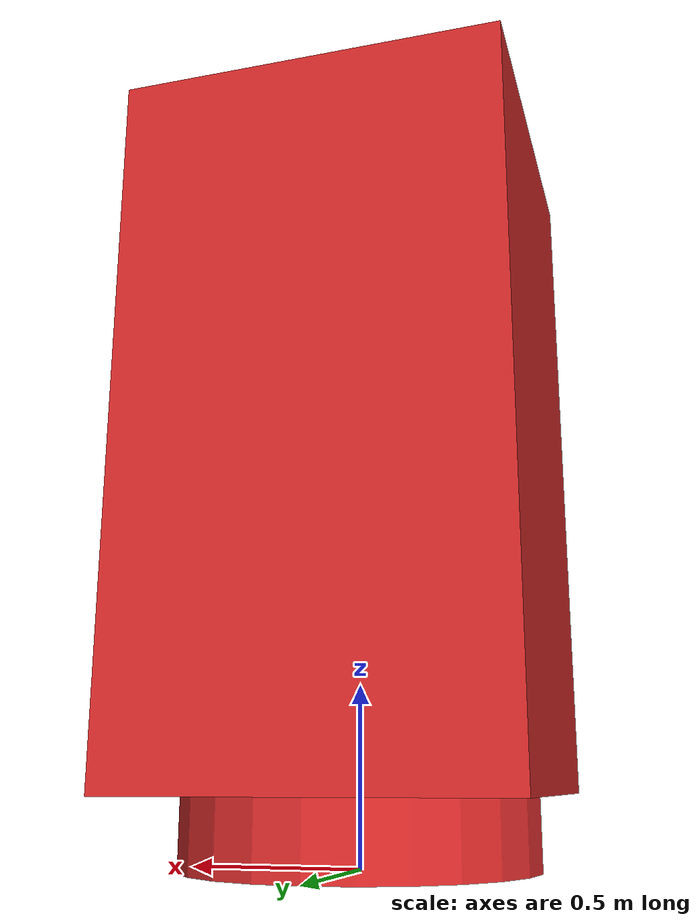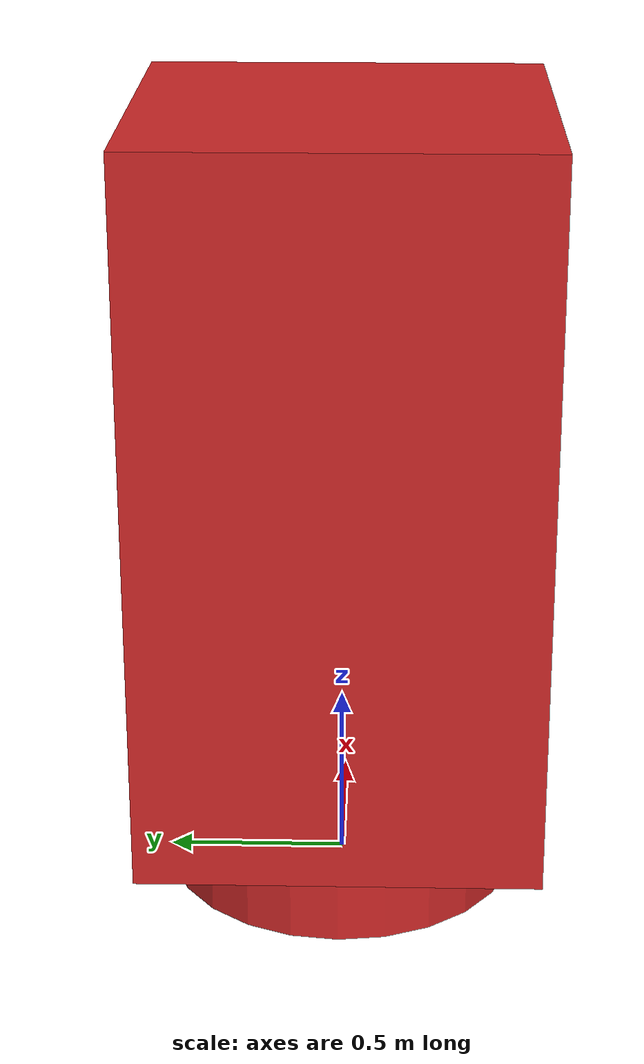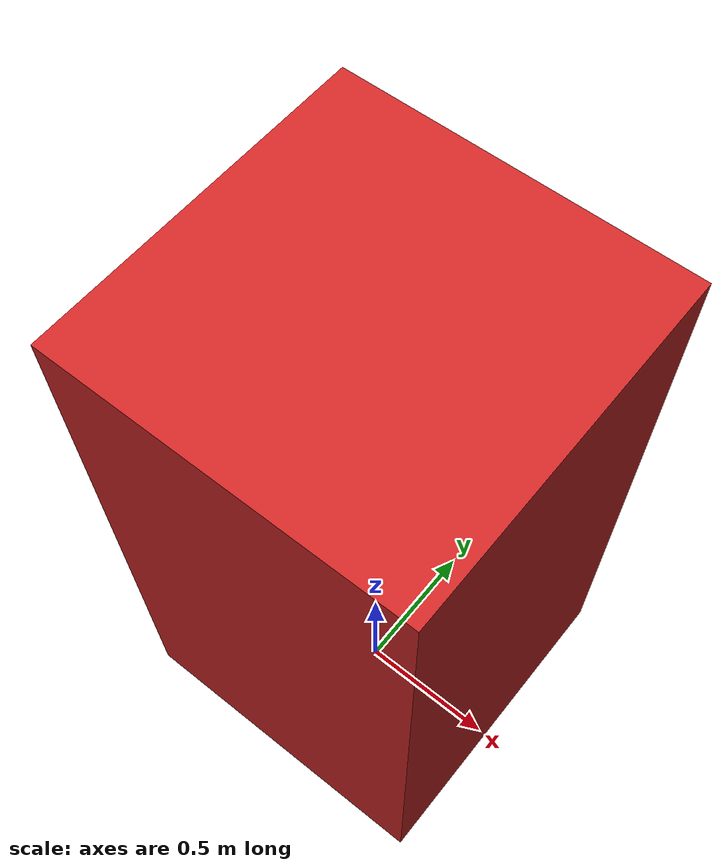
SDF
<?xml version='1.0'?>
<sdf version='1.7'>
  <model name='AMR'>
    <pose>0.0 0.0 0.0 0.0 0.0 0.0</pose>

    <link name='link_0'>
      <inertial>
        <mass>1</mass>
        <inertia>
          <ixx>0.145833</ixx>
          <ixy>0</ixy>
          <ixz>0</ixz>
          <iyy>0.145833</iyy>
          <iyz>0</iyz>
          <izz>0.125</izz>
        </inertia>
        <pose>0 0 0 0 -0 0</pose>
      </inertial>

      <gravity>0</gravity>
      <kinematic>1</kinematic>

      <visual name='visual'>
        <pose>0 0 0.10 0 -0 0</pose>
        <geometry>
          <cylinder>
            <radius>0.5</radius>
            <length>0.2</length>
          </cylinder>
        </geometry>
        <material>
          <script>
            <uri>file://media/materials/scripts/gazebo.material</uri>
            <name>Gazebo/Red</name>
          </script>
        </material>
      </visual>

      <collision name='collision'>
        <pose>0 0 0.10 0 -0 0</pose>
        <geometry>
          <cylinder>
            <radius>0.5</radius>
            <length>0.2</length>
          </cylinder>
        </geometry>
      </collision>
    </link>

    <link name='link_1'>

      <inertial>
        <mass>1</mass>
        <inertia>
          <ixx>0.166667</ixx>
          <ixy>0</ixy>
          <ixz>0</ixz>
          <iyy>0.166667</iyy>
          <iyz>0</iyz>
          <izz>0.166667</izz>
        </inertia>
        <pose>0 0 0 0 -0 0</pose>
      </inertial>

      <visual name='visual'>
        <pose>0 0 1.2 0 -0 0</pose>
        <geometry>
          <box>
            <size>1.1 1.1 2</size>
          </box>
        </geometry>
        <material>
          <script>
            <uri>file://media/materials/scripts/gazebo.material</uri>
            <name>Gazebo/Red</name>
          </script>
        </material>
      </visual>

      <collision name='collision'>
        <pose>0 0 1.2 0 -0 0</pose>
        <geometry>
          <box>
            <size>1.1 1.1 2</size>
          </box>
        </geometry>
      </collision>

    </link>

    <joint name='joint_0' type='fixed'>
      <parent>link_0</parent>
      <child>link_1</child>
      <pose>0 0 0 0 0 0</pose>
    </joint>

    <static>0</static>
    <allow_auto_disable>1</allow_auto_disable>
  </model>
</sdf>
